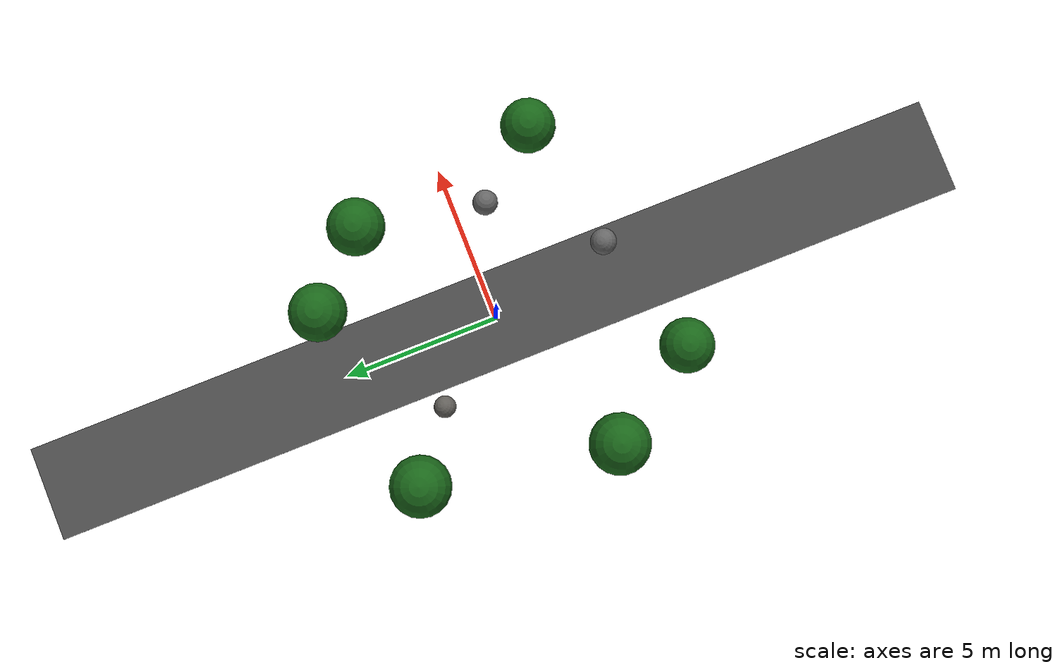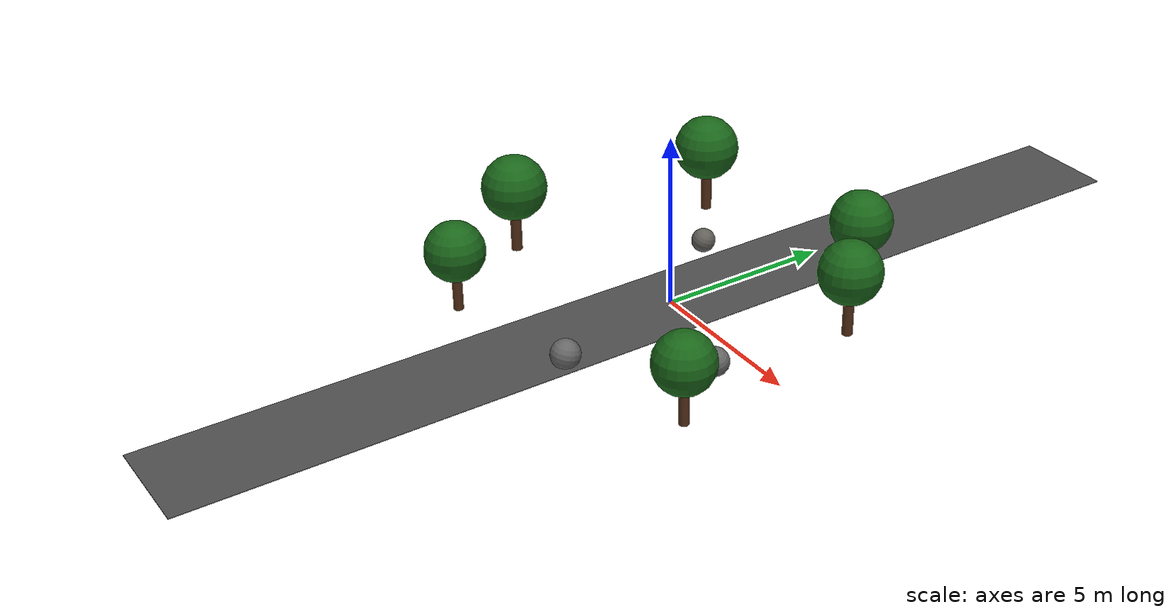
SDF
<sdf version="1.6">
 <world name="terrain_world">
  <include><uri>model://sun</uri></include>
  <physics type="ode">
   <max_step_size>0.001</max_step_size>
   <real_time_factor>1.0</real_time_factor>
   <real_time_update_rate>1000</real_time_update_rate>
  </physics>
  <model name="road_strip">
   <static>true</static>
   <pose>0 0 0.02 0 0 0</pose>
   <link name="link">
    <visual name="visual">
     <geometry><box><size>3.0 30 0.02</size></box></geometry>
     <material><ambient>0.25 0.25 0.25 1</ambient><diffuse>0.3 0.3 0.3 1</diffuse></material>
    </visual>
   </link>
  </model>
  <model name="tree_1">
   <static>true</static>
   <pose>4 3 0 0 0 0</pose>
   <link name="link">
    <collision name="trunk_c">
     <pose>0 0 0.75 0 0 0</pose>
     <geometry><cylinder><radius>0.15</radius><length>1.5</length></cylinder></geometry>
    </collision>
    <visual name="trunk_v">
     <pose>0 0 0.75 0 0 0</pose>
     <geometry><cylinder><radius>0.15</radius><length>1.5</length></cylinder></geometry>
     <material><ambient>0.35 0.2 0.1 1</ambient></material>
    </visual>
    <collision name="foliage_c">
     <pose>0 0 1.9 0 0 0</pose>
     <geometry><sphere><radius>0.9</radius></sphere></geometry>
    </collision>
    <visual name="foliage_v">
     <pose>0 0 1.9 0 0 0</pose>
     <geometry><sphere><radius>0.9</radius></sphere></geometry>
     <material><ambient>0.1 0.4 0.1 1</ambient></material>
    </visual>
   </link>
  </model>
  <model name="tree_2">
   <static>true</static>
   <pose>-4 4 0 0 0 0.6</pose>
   <link name="link">
    <collision name="trunk_c">
     <pose>0 0 0.8 0 0 0</pose>
     <geometry><cylinder><radius>0.16</radius><length>1.6</length></cylinder></geometry>
    </collision>
    <visual name="trunk_v">
     <pose>0 0 0.8 0 0 0</pose>
     <geometry><cylinder><radius>0.16</radius><length>1.6</length></cylinder></geometry>
     <material><ambient>0.35 0.2 0.1 1</ambient></material>
    </visual>
    <collision name="foliage_c">
     <pose>0 0 2.0 0 0 0</pose>
     <geometry><sphere><radius>0.95</radius></sphere></geometry>
    </collision>
    <visual name="foliage_v">
     <pose>0 0 2.0 0 0 0</pose>
     <geometry><sphere><radius>0.95</radius></sphere></geometry>
     <material><ambient>0.1 0.4 0.1 1</ambient></material>
    </visual>
   </link>
  </model>
  <model name="tree_3">
   <static>true</static>
   <pose>5 -3 0 0 0 1.4</pose>
   <link name="link">
    <collision name="trunk_c">
     <pose>0 0 0.7 0 0 0</pose>
     <geometry><cylinder><radius>0.14</radius><length>1.4</length></cylinder></geometry>
    </collision>
    <visual name="trunk_v">
     <pose>0 0 0.7 0 0 0</pose>
     <geometry><cylinder><radius>0.14</radius><length>1.4</length></cylinder></geometry>
     <material><ambient>0.35 0.2 0.1 1</ambient></material>
    </visual>
    <collision name="foliage_c">
     <pose>0 0 1.8 0 0 0</pose>
     <geometry><sphere><radius>0.85</radius></sphere></geometry>
    </collision>
    <visual name="foliage_v">
     <pose>0 0 1.8 0 0 0</pose>
     <geometry><sphere><radius>0.85</radius></sphere></geometry>
     <material><ambient>0.1 0.4 0.1 1</ambient></material>
    </visual>
   </link>
  </model>
  <model name="tree_4">
   <static>true</static>
   <pose>-5 -2 0 0 0 2.0</pose>
   <link name="link">
    <collision name="trunk_c">
     <pose>0 0 0.8 0 0 0</pose>
     <geometry><cylinder><radius>0.16</radius><length>1.6</length></cylinder></geometry>
    </collision>
    <visual name="trunk_v">
     <pose>0 0 0.8 0 0 0</pose>
     <geometry><cylinder><radius>0.16</radius><length>1.6</length></cylinder></geometry>
     <material><ambient>0.35 0.2 0.1 1</ambient></material>
    </visual>
    <collision name="foliage_c">
     <pose>0 0 2.0 0 0 0</pose>
     <geometry><sphere><radius>0.95</radius></sphere></geometry>
    </collision>
    <visual name="foliage_v">
     <pose>0 0 2.0 0 0 0</pose>
     <geometry><sphere><radius>0.95</radius></sphere></geometry>
     <material><ambient>0.1 0.4 0.1 1</ambient></material>
    </visual>
   </link>
  </model>
  <model name="tree_5">
   <static>true</static>
   <pose>2 5 0 0 0 0.9</pose>
   <link name="link">
    <collision name="trunk_c">
     <pose>0 0 0.75 0 0 0</pose>
     <geometry><cylinder><radius>0.15</radius><length>1.5</length></cylinder></geometry>
    </collision>
    <visual name="trunk_v">
     <pose>0 0 0.75 0 0 0</pose>
     <geometry><cylinder><radius>0.15</radius><length>1.5</length></cylinder></geometry>
     <material><ambient>0.35 0.2 0.1 1</ambient></material>
    </visual>
    <collision name="foliage_c">
     <pose>0 0 1.9 0 0 0</pose>
     <geometry><sphere><radius>0.9</radius></sphere></geometry>
    </collision>
    <visual name="foliage_v">
     <pose>0 0 1.9 0 0 0</pose>
     <geometry><sphere><radius>0.9</radius></sphere></geometry>
     <material><ambient>0.1 0.4 0.1 1</ambient></material>
    </visual>
   </link>
  </model>
  <model name="tree_6">
   <static>true</static>
   <pose>-3 -5 0 0 0 2.5</pose>
   <link name="link">
    <collision name="trunk_c">
     <pose>0 0 0.7 0 0 0</pose>
     <geometry><cylinder><radius>0.14</radius><length>1.4</length></cylinder></geometry>
    </collision>
    <visual name="trunk_v">
     <pose>0 0 0.7 0 0 0</pose>
     <geometry><cylinder><radius>0.14</radius><length>1.4</length></cylinder></geometry>
     <material><ambient>0.35 0.2 0.1 1</ambient></material>
    </visual>
    <collision name="foliage_c">
     <pose>0 0 1.8 0 0 0</pose>
     <geometry><sphere><radius>0.85</radius></sphere></geometry>
    </collision>
    <visual name="foliage_v">
     <pose>0 0 1.8 0 0 0</pose>
     <geometry><sphere><radius>0.85</radius></sphere></geometry>
     <material><ambient>0.1 0.4 0.1 1</ambient></material>
    </visual>
   </link>
  </model>
  <model name="rock_1">
   <static>true</static>
   <pose>3.5 -1 0.3 0.3 0.1 0.5</pose>
   <link name="link">
    <collision name="c"><geometry><sphere><radius>0.4</radius></sphere></geometry></collision>
    <visual name="v">
     <geometry><sphere><radius>0.4</radius></sphere></geometry>
     <material><ambient>0.4 0.4 0.4 1</ambient></material>
    </visual>
   </link>
  </model>
  <model name="rock_2">
   <static>true</static>
   <pose>-2 2.5 0.25 0.1 0.4 1.0</pose>
   <link name="link">
    <collision name="c"><geometry><sphere><radius>0.35</radius></sphere></geometry></collision>
    <visual name="v">
     <geometry><sphere><radius>0.35</radius></sphere></geometry>
     <material><ambient>0.38 0.37 0.35 1</ambient></material>
    </visual>
   </link>
  </model>
  <model name="rock_3">
   <static>true</static>
   <pose>1 -4 0.28 0.2 0.2 2.3</pose>
   <link name="link">
    <collision name="c"><geometry><sphere><radius>0.42</radius></sphere></geometry></collision>
    <visual name="v">
     <geometry><sphere><radius>0.42</radius></sphere></geometry>
     <material><ambient>0.4 0.4 0.4 1</ambient></material>
    </visual>
   </link>
  </model>
 </world>
</sdf>
